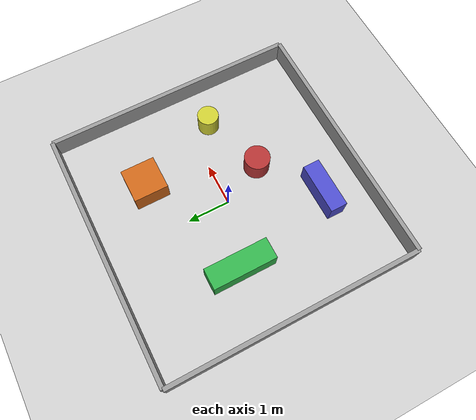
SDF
<?xml version="1.0" ?>
<sdf version="1.6">
  <world name="obstacle_world">

    <!-- Lighting -->
    <include>
      <uri>model://sun</uri>
    </include>

    <!-- Ground -->
    <include>
      <uri>model://ground_plane</uri>
    </include>

    <!-- Physics settings for stable simulation -->
    <physics type="ode">
      <max_step_size>0.001</max_step_size>
      <real_time_factor>1.0</real_time_factor>
    </physics>

    <!-- ============ WALLS (6m x 6m room) ============ -->

    <!-- North wall -->
    <model name="north_wall">
      <static>true</static>
      <link name="link">
        <collision name="collision">
          <geometry><box><size>6.0 0.1 0.5</size></box></geometry>
        </collision>
        <visual name="visual">
          <geometry><box><size>6.0 0.1 0.5</size></box></geometry>
          <material>
            <ambient>0.6 0.6 0.6 1</ambient>
          </material>
        </visual>
      </link>
      <pose>0 3.0 0.25 0 0 0</pose>
    </model>

    <!-- South wall -->
    <model name="south_wall">
      <static>true</static>
      <link name="link">
        <collision name="collision">
          <geometry><box><size>6.0 0.1 0.5</size></box></geometry>
        </collision>
        <visual name="visual">
          <geometry><box><size>6.0 0.1 0.5</size></box></geometry>
          <material>
            <ambient>0.6 0.6 0.6 1</ambient>
          </material>
        </visual>
      </link>
      <pose>0 -3.0 0.25 0 0 0</pose>
    </model>

    <!-- East wall -->
    <model name="east_wall">
      <static>true</static>
      <link name="link">
        <collision name="collision">
          <geometry><box><size>0.1 6.0 0.5</size></box></geometry>
        </collision>
        <visual name="visual">
          <geometry><box><size>0.1 6.0 0.5</size></box></geometry>
          <material>
            <ambient>0.6 0.6 0.6 1</ambient>
          </material>
        </visual>
      </link>
      <pose>3.0 0 0.25 0 0 0</pose>
    </model>

    <!-- West wall -->
    <model name="west_wall">
      <static>true</static>
      <link name="link">
        <collision name="collision">
          <geometry><box><size>0.1 6.0 0.5</size></box></geometry>
        </collision>
        <visual name="visual">
          <geometry><box><size>0.1 6.0 0.5</size></box></geometry>
          <material>
            <ambient>0.6 0.6 0.6 1</ambient>
          </material>
        </visual>
      </link>
      <pose>-3.0 0 0.25 0 0 0</pose>
    </model>

    <!-- ============ OBSTACLES ============ -->

    <!-- Box obstacle 1 -->
    <model name="box_obstacle_1">
      <static>true</static>
      <link name="link">
        <collision name="collision">
          <geometry><box><size>0.8 0.8 0.5</size></box></geometry>
        </collision>
        <visual name="visual">
          <geometry><box><size>0.8 0.8 0.5</size></box></geometry>
          <material>
            <ambient>0.8 0.4 0.1 1</ambient>
          </material>
        </visual>
      </link>
      <pose>1.2 1.5 0.25 0 0 0</pose>
    </model>

    <!-- Box obstacle 2 -->
    <model name="box_obstacle_2">
      <static>true</static>
      <link name="link">
        <collision name="collision">
          <geometry><box><size>0.5 1.5 0.5</size></box></geometry>
        </collision>
        <visual name="visual">
          <geometry><box><size>0.5 1.5 0.5</size></box></geometry>
          <material>
            <ambient>0.2 0.7 0.3 1</ambient>
          </material>
        </visual>
      </link>
      <pose>-1.5 0.5 0.25 0 0 0</pose>
    </model>

    <!-- Cylinder obstacle 1 -->
    <model name="cylinder_obstacle_1">
      <static>true</static>
      <link name="link">
        <collision name="collision">
          <geometry><cylinder><radius>0.3</radius><length>0.5</length></cylinder></geometry>
        </collision>
        <visual name="visual">
          <geometry><cylinder><radius>0.3</radius><length>0.5</length></cylinder></geometry>
          <material>
            <ambient>0.7 0.2 0.2 1</ambient>
          </material>
        </visual>
      </link>
      <pose>0.5 -1.0 0.25 0 0 0</pose>
    </model>

    <!-- Box obstacle 3 -->
    <model name="box_obstacle_3">
      <static>true</static>
      <link name="link">
        <collision name="collision">
          <geometry><box><size>1.2 0.4 0.5</size></box></geometry>
        </collision>
        <visual name="visual">
          <geometry><box><size>1.2 0.4 0.5</size></box></geometry>
          <material>
            <ambient>0.3 0.3 0.8 1</ambient>
          </material>
        </visual>
      </link>
      <pose>-0.8 -2.0 0.25 0 0 0</pose>
    </model>

    <!-- Cylinder obstacle 2 -->
    <model name="cylinder_obstacle_2">
      <static>true</static>
      <link name="link">
        <collision name="collision">
          <geometry><cylinder><radius>0.25</radius><length>0.5</length></cylinder></geometry>
        </collision>
        <visual name="visual">
          <geometry><cylinder><radius>0.25</radius><length>0.5</length></cylinder></geometry>
          <material>
            <ambient>0.8 0.8 0.2 1</ambient>
          </material>
        </visual>
      </link>
      <pose>2.0 -0.5 0.25 0 0 0</pose>
    </model>

  </world>
</sdf>
